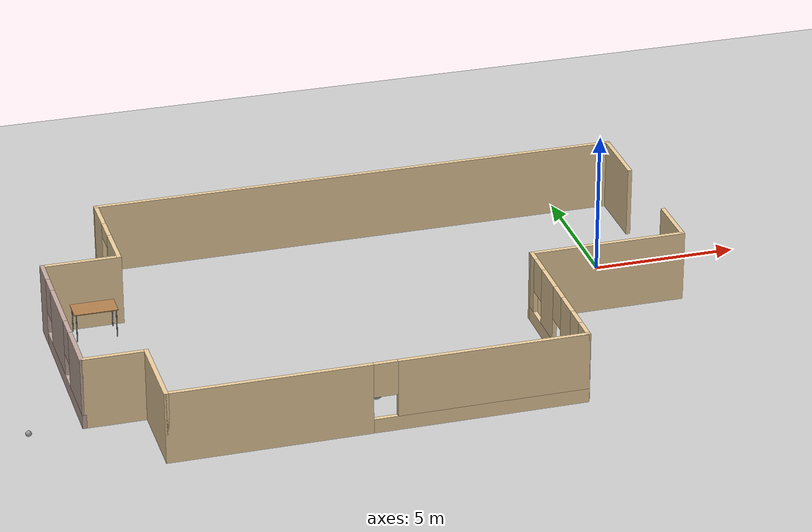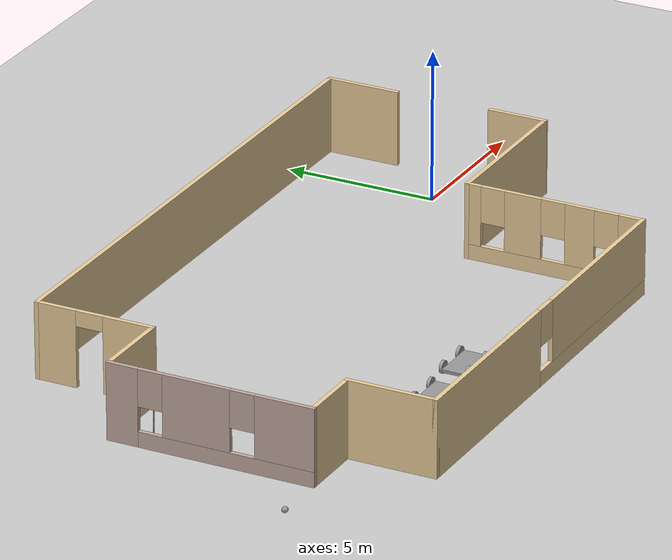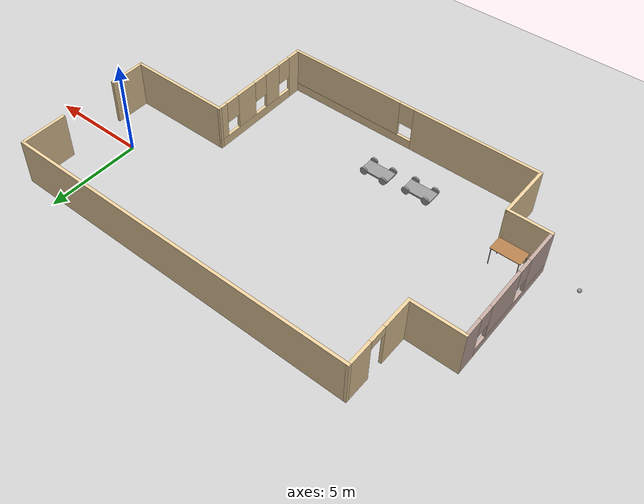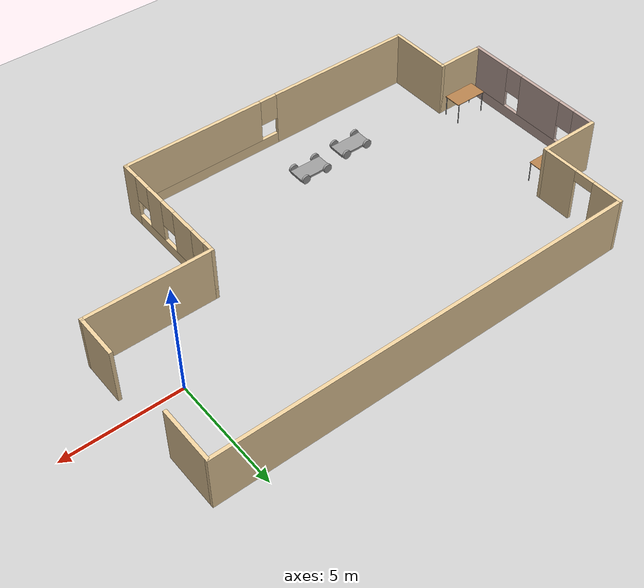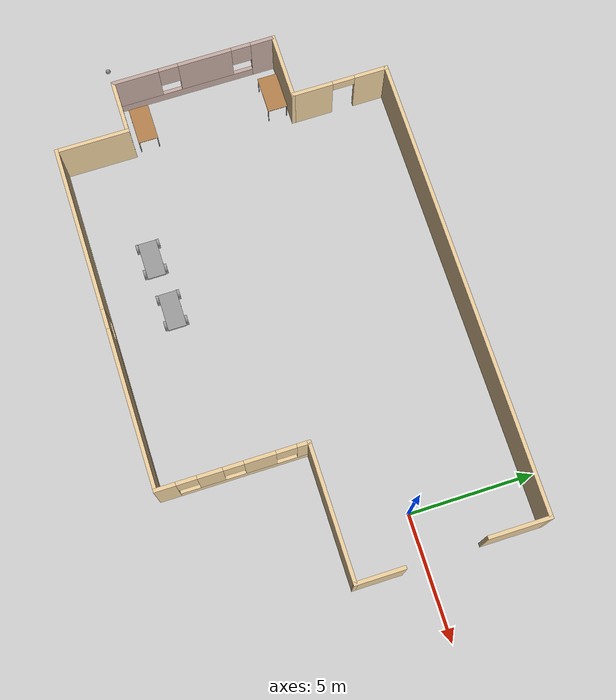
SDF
<sdf version="1.6">
 <world name="default">
  <plugin name="welcome" filename="libwelcome.so"/>
  <light name="sun" type="directional">
   <pose>0 0 10 0 -0 0</pose>
   <diffuse>0.8 0.8 0.8 1</diffuse>
   <specular>0.2 0.2 0.2 1</specular>
   <attenuation>
    <range>1000</range>
    <constant>0.9</constant>
    <linear>0.01</linear>
    <quadratic>0.001</quadratic>
   </attenuation>
   <direction>-0.5 0.1 -0.9</direction>
  </light>
  <model name="ground_plane">
   <static>1</static>
   <link name="link">
    <collision name="collision">
     <geometry><plane><normal>0 0 1</normal><size>100 100</size></plane></geometry>
     <surface>
      <contact><collide_bitmask>65535</collide_bitmask></contact>
      <friction><ode><mu>100</mu><mu2>50</mu2></ode></friction>
     </surface>
    </collision>
    <visual name="visual">
     <cast_shadows>0</cast_shadows>
     <geometry><plane><normal>0 0 1</normal><size>100 100</size></plane></geometry>
     <material>
      <script><uri>file://media/materials/scripts/gazebo.material</uri><name>Gazebo/Grey</name></script>
     </material>
    </visual>
   </link>
  </model>
  <gravity>0 0 -9.8</gravity>
  <magnetic_field>6e-06 2.3e-05 -4.2e-05</magnetic_field>
  <atmosphere type="adiabatic"/>
  <physics name="default_physics" default="0" type="ode">
   <max_step_size>0.001</max_step_size>
   <real_time_factor>1</real_time_factor>
   <real_time_update_rate>1000</real_time_update_rate>
  </physics>
  <scene><ambient>0.4 0.4 0.4 1</ambient><background>0.7 0.7 0.7 1</background><shadows>1</shadows></scene>
  <spherical_coordinates>
   <surface_model>EARTH_WGS84</surface_model>
   <latitude_deg>0</latitude_deg>
   <longitude_deg>0</longitude_deg>
   <elevation>0</elevation>
   <heading_deg>0</heading_deg>
  </spherical_coordinates>
  <model name="shop">
   <pose>-8.64191 -2.07418 0 0 -0 0</pose>
   <link name="Wall_0">
    <collision name="Wall_0_Collision">
     <geometry><box><size>18.75 0.15 2.5</size></box></geometry>
     <pose>0 0 1.25 0 -0 0</pose>
    </collision>
    <visual name="Wall_0_Visual">
     <pose>0 0 1.25 0 -0 0</pose>
     <geometry><box><size>18.75 0.15 2.5</size></box></geometry>
     <material>
      <script><uri>file://media/materials/scripts/gazebo.material</uri><name>Gazebo/Grey</name></script>
      <ambient>0.921569 0.807843 0.615686 1</ambient>
     </material>
     <meta><layer>0</layer></meta>
    </visual>
    <pose>1.24997 6.65 0 0 0 -3.14157</pose>
   </link>
   <link name="Wall_1">
    <pose>-8.04997 4.72482 0 0 0 -1.5708</pose>
    <visual name="Wall_1_Visual_0">
     <pose>-1.30185 0 1.25 0 -0 0</pose>
     <geometry><box><size>1.3963 0.15 2.5</size></box></geometry>
     <material>
      <script><uri>file://media/materials/scripts/gazebo.material</uri><name>Gazebo/Grey</name></script>
      <ambient>0.921569 0.807843 0.615686 1</ambient>
     </material>
     <meta><layer>0</layer></meta>
    </visual>
    <collision name="Wall_1_Collision_0">
     <geometry><box><size>1.3963 0.15 2.5</size></box></geometry>
     <pose>-1.30185 0 1.25 0 -0 0</pose>
    </collision>
    <visual name="Wall_1_Visual_1">
     <pose>1.14815 0 1.25 0 -0 0</pose>
     <geometry><box><size>1.7037 0.15 2.5</size></box></geometry>
     <material>
      <script><uri>file://media/materials/scripts/gazebo.material</uri><name>Gazebo/Grey</name></script>
      <ambient>0.921569 0.807843 0.615686 1</ambient>
     </material>
     <meta><layer>0</layer></meta>
    </visual>
    <collision name="Wall_1_Collision_1">
     <geometry><box><size>1.7037 0.15 2.5</size></box></geometry>
     <pose>1.14815 0 1.25 0 -0 0</pose>
    </collision>
    <visual name="Wall_1_Visual_2">
     <pose>-0.1537 0 2.25 0 -0 0</pose>
     <geometry><box><size>0.9 0.15 0.5</size></box></geometry>
     <material>
      <script><uri>file://media/materials/scripts/gazebo.material</uri><name>Gazebo/Grey</name></script>
      <ambient>0.921569 0.807843 0.615686 1</ambient>
     </material>
     <meta><layer>0</layer></meta>
    </visual>
    <collision name="Wall_1_Collision_2">
     <geometry><box><size>0.9 0.15 0.5</size></box></geometry>
     <pose>-0.1537 0 2.25 0 -0 0</pose>
    </collision>
   </link>
   <link name="Wall_14">
    <collision name="Wall_14_Collision">
     <geometry><box><size>2.5 0.15 2.5</size></box></geometry>
     <pose>0 0 1.25 0 -0 0</pose>
    </collision>
    <visual name="Wall_14_Visual">
     <pose>0 0 1.25 0 -0 0</pose>
     <geometry><box><size>2.5 0.15 2.5</size></box></geometry>
     <material>
      <script><uri>file://media/materials/scripts/gazebo.material</uri><name>Gazebo/Grey</name></script>
      <ambient>0.921569 0.807843 0.615686 1</ambient>
     </material>
     <meta><layer>0</layer></meta>
    </visual>
    <pose>10.5499 5.47518 0 0 0 -1.5708</pose>
   </link>
   <link name="Wall_2">
    <collision name="Wall_2_Collision">
     <geometry><box><size>2.75 0.15 2.5</size></box></geometry>
     <pose>0 0 1.25 0 -0 0</pose>
    </collision>
    <visual name="Wall_2_Visual">
     <pose>0 0 1.25 0 -0 0</pose>
     <geometry><box><size>2.75 0.15 2.5</size></box></geometry>
     <material>
      <script><uri>file://media/materials/scripts/gazebo.material</uri><name>Gazebo/Grey</name></script>
      <ambient>0.921569 0.807843 0.615686 1</ambient>
     </material>
     <meta><layer>0</layer></meta>
    </visual>
    <pose>-9.34997 2.79982 0 0 -0 3.14159</pose>
   </link>
   <link name="Wall_3">
    <pose>-10.65 -0.500183 0 0 0 -1.5708</pose>
    <visual name="Wall_3_Visual_0">
     <pose>-2.85749 0 1.25 0 -0 0</pose>
     <geometry><box><size>1.03502 0.15 2.5</size></box></geometry>
     <material>
      <script><uri>file://media/materials/scripts/gazebo.material</uri><name>Gazebo/Grey</name></script>
      <ambient>0.760784 0.662745 0.627451 1</ambient>
     </material>
     <meta><layer>0</layer></meta>
    </visual>
    <collision name="Wall_3_Collision_0">
     <geometry><box><size>1.03502 0.15 2.5</size></box></geometry>
     <pose>-2.85749 0 1.25 0 -0 0</pose>
    </collision>
    <visual name="Wall_3_Visual_1">
     <pose>0.517512 0 0.25 0 -0 0</pose>
     <geometry><box><size>5.71498 0.15 0.5</size></box></geometry>
     <material>
      <script><uri>file://media/materials/scripts/gazebo.material</uri><name>Gazebo/Grey</name></script>
      <ambient>0.760784 0.662745 0.627451 1</ambient>
     </material>
     <meta><layer>0</layer></meta>
    </visual>
    <collision name="Wall_3_Collision_1">
     <geometry><box><size>5.71498 0.15 0.5</size></box></geometry>
     <pose>0.517512 0 0.25 0 -0 0</pose>
    </collision>
    <visual name="Wall_3_Visual_2">
     <pose>-0.443119 0 1.5 0 -0 0</pose>
     <geometry><box><size>2.19371 0.15 2</size></box></geometry>
     <material>
      <script><uri>file://media/materials/scripts/gazebo.material</uri><name>Gazebo/Grey</name></script>
      <ambient>0.760784 0.662745 0.627451 1</ambient>
     </material>
     <meta><layer>0</layer></meta>
    </visual>
    <collision name="Wall_3_Collision_2">
     <geometry><box><size>2.19371 0.15 2</size></box></geometry>
     <pose>-0.443119 0 1.5 0 -0 0</pose>
    </collision>
    <visual name="Wall_3_Visual_3">
     <pose>2.41437 0 1.5 0 -0 0</pose>
     <geometry><box><size>1.92126 0.15 2</size></box></geometry>
     <material>
      <script><uri>file://media/materials/scripts/gazebo.material</uri><name>Gazebo/Grey</name></script>
      <ambient>0.760784 0.662745 0.627451 1</ambient>
     </material>
     <meta><layer>0</layer></meta>
    </visual>
    <collision name="Wall_3_Collision_3">
     <geometry><box><size>1.92126 0.15 2</size></box></geometry>
     <pose>2.41437 0 1.5 0 -0 0</pose>
    </collision>
    <visual name="Wall_3_Visual_4">
     <pose>-1.93998 0 1.9 0 -0 0</pose>
     <geometry><box><size>0.8 0.15 1.2</size></box></geometry>
     <material>
      <script><uri>file://media/materials/scripts/gazebo.material</uri><name>Gazebo/Grey</name></script>
      <ambient>0.760784 0.662745 0.627451 1</ambient>
     </material>
     <meta><layer>0</layer></meta>
    </visual>
    <collision name="Wall_3_Collision_4">
     <geometry><box><size>0.8 0.15 1.2</size></box></geometry>
     <pose>-1.93998 0 1.9 0 -0 0</pose>
    </collision>
    <visual name="Wall_3_Visual_5">
     <pose>1.05374 0 1.9 0 -0 0</pose>
     <geometry><box><size>0.8 0.15 1.2</size></box></geometry>
     <material>
      <script><uri>file://media/materials/scripts/gazebo.material</uri><name>Gazebo/Grey</name></script>
      <ambient>0.760784 0.662745 0.627451 1</ambient>
     </material>
     <meta><layer>0</layer></meta>
    </visual>
    <collision name="Wall_3_Collision_5">
     <geometry><box><size>0.8 0.15 1.2</size></box></geometry>
     <pose>1.05374 0 1.9 0 -0 0</pose>
    </collision>
   </link>
   <link name="Wall_4">
    <collision name="Wall_4_Collision">
     <geometry><box><size>2.25 0.15 2.5</size></box></geometry>
     <pose>0 0 1.25 0 -0 0</pose>
    </collision>
    <visual name="Wall_4_Visual">
     <pose>0 0 1.25 0 -0 0</pose>
     <geometry><box><size>2.25 0.15 2.5</size></box></geometry>
     <material>
      <script><uri>file://media/materials/scripts/gazebo.material</uri><name>Gazebo/Grey</name></script>
      <ambient>0.921569 0.807843 0.615686 1</ambient>
     </material>
     <meta><layer>0</layer></meta>
    </visual>
    <pose>-9.59997 -3.80018 0 0 -0 0</pose>
   </link>
   <link name="Wall_5">
    <collision name="Wall_5_Collision">
     <geometry><box><size>3 0.15 2.5</size></box></geometry>
     <pose>0 0 1.25 0 -0 0</pose>
    </collision>
    <visual name="Wall_5_Visual">
     <pose>0 0 1.25 0 -0 0</pose>
     <geometry><box><size>3 0.15 2.5</size></box></geometry>
     <material>
      <script><uri>file://media/materials/scripts/gazebo.material</uri><name>Gazebo/Grey</name></script>
      <ambient>0.921569 0.807843 0.615686 1</ambient>
     </material>
     <meta><layer>0</layer></meta>
    </visual>
    <pose>-8.54997 -5.22518 0 0 0 -1.5708</pose>
   </link>
   <link name="Wall_6">
    <pose>-1.62497 -6.65018 0 0 -0 0</pose>
    <visual name="Wall_6_Visual_0">
     <pose>-3.61679 0 1.25 0 -0 0</pose>
     <geometry><box><size>6.76642 0.15 2.5</size></box></geometry>
     <material>
      <script><uri>file://media/materials/scripts/gazebo.material</uri><name>Gazebo/Grey</name></script>
      <ambient>0.921569 0.807843 0.615686 1</ambient>
     </material>
     <meta><layer>0</layer></meta>
    </visual>
    <collision name="Wall_6_Collision_0">
     <geometry><box><size>6.76642 0.15 2.5</size></box></geometry>
     <pose>-3.61679 0 1.25 0 -0 0</pose>
    </collision>
    <visual name="Wall_6_Visual_1">
     <pose>3.38321 0 0.25 0 -0 0</pose>
     <geometry><box><size>7.23358 0.15 0.5</size></box></geometry>
     <material>
      <script><uri>file://media/materials/scripts/gazebo.material</uri><name>Gazebo/Grey</name></script>
      <ambient>0.921569 0.807843 0.615686 1</ambient>
     </material>
     <meta><layer>0</layer></meta>
    </visual>
    <collision name="Wall_6_Collision_1">
     <geometry><box><size>7.23358 0.15 0.5</size></box></geometry>
     <pose>3.38321 0 0.25 0 -0 0</pose>
    </collision>
    <visual name="Wall_6_Visual_2">
     <pose>3.78321 0 1.5 0 -0 0</pose>
     <geometry><box><size>6.43358 0.15 2</size></box></geometry>
     <material>
      <script><uri>file://media/materials/scripts/gazebo.material</uri><name>Gazebo/Grey</name></script>
      <ambient>0.921569 0.807843 0.615686 1</ambient>
     </material>
     <meta><layer>0</layer></meta>
    </visual>
    <collision name="Wall_6_Collision_2">
     <geometry><box><size>6.43358 0.15 2</size></box></geometry>
     <pose>3.78321 0 1.5 0 -0 0</pose>
    </collision>
    <visual name="Wall_6_Visual_3">
     <pose>0.166423 0 1.9 0 -0 0</pose>
     <geometry><box><size>0.8 0.15 1.2</size></box></geometry>
     <material>
      <script><uri>file://media/materials/scripts/gazebo.material</uri><name>Gazebo/Grey</name></script>
      <ambient>0.921569 0.807843 0.615686 1</ambient>
     </material>
     <meta><layer>0</layer></meta>
    </visual>
    <collision name="Wall_6_Collision_3">
     <geometry><box><size>0.8 0.15 1.2</size></box></geometry>
     <pose>0.166423 0 1.9 0 -0 0</pose>
    </collision>
   </link>
   <link name="Wall_7">
    <pose>5.30003 -3.72518 0 0 -0 1.5708</pose>
    <visual name="Wall_7_Visual_0">
     <pose>-2.57646 0 1.25 0 -0 0</pose>
     <geometry><box><size>0.847072 0.15 2.5</size></box></geometry>
     <material>
      <script><uri>file://media/materials/scripts/gazebo.material</uri><name>Gazebo/Grey</name></script>
      <ambient>0.921569 0.807843 0.615686 1</ambient>
     </material>
     <meta><layer>0</layer></meta>
    </visual>
    <collision name="Wall_7_Collision_0">
     <geometry><box><size>0.847072 0.15 2.5</size></box></geometry>
     <pose>-2.57646 0 1.25 0 -0 0</pose>
    </collision>
    <visual name="Wall_7_Visual_1">
     <pose>0.423536 0 0.25 0 -0 0</pose>
     <geometry><box><size>5.15293 0.15 0.5</size></box></geometry>
     <material>
      <script><uri>file://media/materials/scripts/gazebo.material</uri><name>Gazebo/Grey</name></script>
      <ambient>0.921569 0.807843 0.615686 1</ambient>
     </material>
     <meta><layer>0</layer></meta>
    </visual>
    <collision name="Wall_7_Collision_1">
     <geometry><box><size>5.15293 0.15 0.5</size></box></geometry>
     <pose>0.423536 0 0.25 0 -0 0</pose>
    </collision>
    <visual name="Wall_7_Visual_2">
     <pose>-0.862905 0 1.5 0 -0 0</pose>
     <geometry><box><size>0.980045 0.15 2</size></box></geometry>
     <material>
      <script><uri>file://media/materials/scripts/gazebo.material</uri><name>Gazebo/Grey</name></script>
      <ambient>0.921569 0.807843 0.615686 1</ambient>
     </material>
     <meta><layer>0</layer></meta>
    </visual>
    <collision name="Wall_7_Collision_2">
     <geometry><box><size>0.980045 0.15 2</size></box></geometry>
     <pose>-0.862905 0 1.5 0 -0 0</pose>
    </collision>
    <visual name="Wall_7_Visual_3">
     <pose>1.03851 0 1.5 0 -0 0</pose>
     <geometry><box><size>1.22278 0.15 2</size></box></geometry>
     <material>
      <script><uri>file://media/materials/scripts/gazebo.material</uri><name>Gazebo/Grey</name></script>
      <ambient>0.921569 0.807843 0.615686 1</ambient>
     </material>
     <meta><layer>0</layer></meta>
    </visual>
    <collision name="Wall_7_Collision_3">
     <geometry><box><size>1.22278 0.15 2</size></box></geometry>
     <pose>1.03851 0 1.5 0 -0 0</pose>
    </collision>
    <visual name="Wall_7_Visual_4">
     <pose>2.72495 0 1.5 0 -0 0</pose>
     <geometry><box><size>0.550104 0.15 2</size></box></geometry>
     <material>
      <script><uri>file://media/materials/scripts/gazebo.material</uri><name>Gazebo/Grey</name></script>
      <ambient>0.921569 0.807843 0.615686 1</ambient>
     </material>
     <meta><layer>0</layer></meta>
    </visual>
    <collision name="Wall_7_Collision_4">
     <geometry><box><size>0.550104 0.15 2</size></box></geometry>
     <pose>2.72495 0 1.5 0 -0 0</pose>
    </collision>
    <visual name="Wall_7_Visual_5">
     <pose>-1.75293 0 1.9 0 -0 0</pose>
     <geometry><box><size>0.8 0.15 1.2</size></box></geometry>
     <material>
      <script><uri>file://media/materials/scripts/gazebo.material</uri><name>Gazebo/Grey</name></script>
      <ambient>0.921569 0.807843 0.615686 1</ambient>
     </material>
     <meta><layer>0</layer></meta>
    </visual>
    <collision name="Wall_7_Collision_5">
     <geometry><box><size>0.8 0.15 1.2</size></box></geometry>
     <pose>-1.75293 0 1.9 0 -0 0</pose>
    </collision>
    <visual name="Wall_7_Visual_6">
     <pose>0.027117 0 1.9 0 -0 0</pose>
     <geometry><box><size>0.8 0.15 1.2</size></box></geometry>
     <material>
      <script><uri>file://media/materials/scripts/gazebo.material</uri><name>Gazebo/Grey</name></script>
      <ambient>0.921569 0.807843 0.615686 1</ambient>
     </material>
     <meta><layer>0</layer></meta>
    </visual>
    <collision name="Wall_7_Collision_6">
     <geometry><box><size>0.8 0.15 1.2</size></box></geometry>
     <pose>0.027117 0 1.9 0 -0 0</pose>
    </collision>
    <visual name="Wall_7_Visual_7">
     <pose>2.0499 0 1.9 0 -0 0</pose>
     <geometry><box><size>0.8 0.15 1.2</size></box></geometry>
     <material>
      <script><uri>file://media/materials/scripts/gazebo.material</uri><name>Gazebo/Grey</name></script>
      <ambient>0.921569 0.807843 0.615686 1</ambient>
     </material>
     <meta><layer>0</layer></meta>
    </visual>
    <collision name="Wall_7_Collision_7">
     <geometry><box><size>0.8 0.15 1.2</size></box></geometry>
     <pose>2.0499 0 1.9 0 -0 0</pose>
    </collision>
   </link>
   <link name="Wall_8">
    <collision name="Wall_8_Collision">
     <geometry><box><size>5.5 0.15 2.5</size></box></geometry>
     <pose>0 0 1.25 0 -0 0</pose>
    </collision>
    <visual name="Wall_8_Visual">
     <pose>0 0 1.25 0 -0 0</pose>
     <geometry><box><size>5.5 0.15 2.5</size></box></geometry>
     <material>
      <script><uri>file://media/materials/scripts/gazebo.material</uri><name>Gazebo/Grey</name></script>
      <ambient>0.921569 0.807843 0.615686 1</ambient>
     </material>
     <meta><layer>0</layer></meta>
    </visual>
    <pose>7.97497 -0.800001 0 0 -0 6.8e-05</pose>
   </link>
   <link name="Wall_9">
    <collision name="Wall_9_Collision">
     <geometry><box><size>2 0.15 2.5</size></box></geometry>
     <pose>0 0 1.25 0 -0 0</pose>
    </collision>
    <visual name="Wall_9_Visual">
     <pose>0 0 1.25 0 -0 0</pose>
     <geometry><box><size>2 0.15 2.5</size></box></geometry>
     <material>
      <script><uri>file://media/materials/scripts/gazebo.material</uri><name>Gazebo/Grey</name></script>
      <ambient>0.921569 0.807843 0.615686 1</ambient>
     </material>
     <meta><layer>0</layer></meta>
    </visual>
    <pose>10.6499 0.125181 0 0 -0 1.5708</pose>
   </link>
   <static>1</static>
  </model>
  <model name="car">
   <link name="link_0">
    <pose>0 0 0.124 0 -0 0</pose>
    <inertial>
     <mass>1</mass>
     <inertia>
      <ixx>0.166667</ixx>
      <ixy>0</ixy>
      <ixz>0</ixz>
      <iyy>0.166667</iyy>
      <iyz>0</iyz>
      <izz>0.166667</izz>
     </inertia>
    </inertial>
    <visual name="visual">
     <geometry><box><size>1.5 0.75 0.1</size></box></geometry>
     <material>
      <lighting>1</lighting>
      <script><uri>file://media/materials/scripts/gazebo.material</uri><name>Gazebo/Grey</name></script>
      <shader type="pixel"><normal_map>__default__</normal_map></shader>
      <ambient>0.3 0.3 0.3 1</ambient>
      <diffuse>0.7 0.7 0.7 1</diffuse>
      <specular>0.01 0.01 0.01 1</specular>
      <emissive>0 0 0 1</emissive>
     </material>
    </visual>
    <collision name="collision">
     <geometry><box><size>1.5 0.75 0.1</size></box></geometry>
     <surface>
      <friction>
       <ode><mu>1</mu><mu2>1</mu2><fdir1>0 0 0</fdir1><slip1>0</slip1><slip2>0</slip2></ode>
       <torsional>
        <coefficient>1</coefficient>
        <patch_radius>0</patch_radius>
        <surface_radius>0</surface_radius>
        <use_patch_radius>1</use_patch_radius>
        <ode><slip>0</slip></ode>
       </torsional>
      </friction>
      <bounce><restitution_coefficient>0</restitution_coefficient><threshold>1e+06</threshold></bounce>
      <contact>
       <collide_without_contact>0</collide_without_contact>
       <collide_without_contact_bitmask>1</collide_without_contact_bitmask>
       <collide_bitmask>1</collide_bitmask>
       <ode>
        <soft_cfm>0</soft_cfm>
        <soft_erp>0.2</soft_erp>
        <kp>1e+13</kp>
        <kd>1</kd>
        <max_vel>0.01</max_vel>
        <min_depth>0</min_depth>
       </ode>
       <bullet>
        <split_impulse>1</split_impulse>
        <split_impulse_penetration_threshold>-0.01</split_impulse_penetration_threshold>
        <soft_cfm>0</soft_cfm>
        <soft_erp>0.2</soft_erp>
        <kp>1e+13</kp>
        <kd>1</kd>
       </bullet>
      </contact>
     </surface>
    </collision>
   </link>
   <link name="link_1_clone">
    <pose>-0.55 0.425019 -0.031 0 -0 0</pose>
    <inertial>
     <mass>1</mass>
     <inertia><ixx>0.145833</ixx><ixy>0</ixy><ixz>0</ixz><iyy>0.145833</iyy><iyz>0</iyz><izz>0.125</izz></inertia>
    </inertial>
    <visual name="visual">
     <pose>0 0 0.2 1.5707 -0 0</pose>
     <geometry><cylinder><radius>0.2</radius><length>0.1</length></cylinder></geometry>
     <material>
      <lighting>1</lighting>
      <script><uri>file://media/materials/scripts/gazebo.material</uri><name>Gazebo/Grey</name></script>
      <shader type="pixel"><normal_map>__default__</normal_map></shader>
      <ambient>0.3 0.3 0.3 1</ambient>
      <diffuse>0.7 0.7 0.7 1</diffuse>
      <specular>0.01 0.01 0.01 1</specular>
      <emissive>0 0 0 1</emissive>
     </material>
    </visual>
    <collision name="collision">
     <pose>0 0 0.2 1.5707 -0 0</pose>
     <geometry><cylinder><radius>0.2</radius><length>0.1</length></cylinder></geometry>
     <surface>
      <friction>
       <ode><mu>1</mu><mu2>1</mu2><fdir1>0 0 0</fdir1><slip1>0</slip1><slip2>0</slip2></ode>
       <torsional>
        <coefficient>1</coefficient>
        <patch_radius>0</patch_radius>
        <surface_radius>0</surface_radius>
        <use_patch_radius>1</use_patch_radius>
        <ode><slip>0</slip></ode>
       </torsional>
      </friction>
      <bounce><restitution_coefficient>0</restitution_coefficient><threshold>1e+06</threshold></bounce>
      <contact>
       <collide_without_contact>0</collide_without_contact>
       <collide_without_contact_bitmask>1</collide_without_contact_bitmask>
       <collide_bitmask>1</collide_bitmask>
       <ode>
        <soft_cfm>0</soft_cfm>
        <soft_erp>0.2</soft_erp>
        <kp>1e+13</kp>
        <kd>1</kd>
        <max_vel>0.01</max_vel>
        <min_depth>0</min_depth>
       </ode>
       <bullet>
        <split_impulse>1</split_impulse>
        <split_impulse_penetration_threshold>-0.01</split_impulse_penetration_threshold>
        <soft_cfm>0</soft_cfm>
        <soft_erp>0.2</soft_erp>
        <kp>1e+13</kp>
        <kd>1</kd>
       </bullet>
      </contact>
     </surface>
    </collision>
   </link>
   <link name="link_1_clone_clone">
    <pose>0.55 0.425019 -0.031 0 -0 0</pose>
    <inertial>
     <mass>1</mass>
     <inertia><ixx>0.145833</ixx><ixy>0</ixy><ixz>0</ixz><iyy>0.145833</iyy><iyz>0</iyz><izz>0.125</izz></inertia>
    </inertial>
    <visual name="visual">
     <pose>0 0 0.2 1.5707 -0 0</pose>
     <geometry><cylinder><radius>0.2</radius><length>0.1</length></cylinder></geometry>
     <material>
      <lighting>1</lighting>
      <script><uri>file://media/materials/scripts/gazebo.material</uri><name>Gazebo/Grey</name></script>
      <shader type="pixel"><normal_map>__default__</normal_map></shader>
      <ambient>0.3 0.3 0.3 1</ambient>
      <diffuse>0.7 0.7 0.7 1</diffuse>
      <specular>0.01 0.01 0.01 1</specular>
      <emissive>0 0 0 1</emissive>
     </material>
    </visual>
    <collision name="collision">
     <pose>0 0 0.2 1.5707 -0 0</pose>
     <geometry><cylinder><radius>0.2</radius><length>0.1</length></cylinder></geometry>
     <surface>
      <friction>
       <ode><mu>1</mu><mu2>1</mu2><fdir1>0 0 0</fdir1><slip1>0</slip1><slip2>0</slip2></ode>
       <torsional>
        <coefficient>1</coefficient>
        <patch_radius>0</patch_radius>
        <surface_radius>0</surface_radius>
        <use_patch_radius>1</use_patch_radius>
        <ode><slip>0</slip></ode>
       </torsional>
      </friction>
      <bounce><restitution_coefficient>0</restitution_coefficient><threshold>1e+06</threshold></bounce>
      <contact>
       <collide_without_contact>0</collide_without_contact>
       <collide_without_contact_bitmask>1</collide_without_contact_bitmask>
       <collide_bitmask>1</collide_bitmask>
       <ode>
        <soft_cfm>0</soft_cfm>
        <soft_erp>0.2</soft_erp>
        <kp>1e+13</kp>
        <kd>1</kd>
        <max_vel>0.01</max_vel>
        <min_depth>0</min_depth>
       </ode>
       <bullet>
        <split_impulse>1</split_impulse>
        <split_impulse_penetration_threshold>-0.01</split_impulse_penetration_threshold>
        <soft_cfm>0</soft_cfm>
        <soft_erp>0.2</soft_erp>
        <kp>1e+13</kp>
        <kd>1</kd>
       </bullet>
      </contact>
     </surface>
    </collision>
   </link>
   <link name="link_1_clone_clone_clone">
    <pose>0.55 -0.425019 -0.031 0 -0 0</pose>
    <inertial>
     <mass>1</mass>
     <inertia><ixx>0.145833</ixx><ixy>0</ixy><ixz>0</ixz><iyy>0.145833</iyy><iyz>0</iyz><izz>0.125</izz></inertia>
    </inertial>
    <visual name="visual">
     <pose>0 0 0.2 1.5707 -0 0</pose>
     <geometry><cylinder><radius>0.2</radius><length>0.1</length></cylinder></geometry>
     <material>
      <lighting>1</lighting>
      <script><uri>file://media/materials/scripts/gazebo.material</uri><name>Gazebo/Grey</name></script>
      <shader type="pixel"><normal_map>__default__</normal_map></shader>
      <ambient>0.3 0.3 0.3 1</ambient>
      <diffuse>0.7 0.7 0.7 1</diffuse>
      <specular>0.01 0.01 0.01 1</specular>
      <emissive>0 0 0 1</emissive>
     </material>
    </visual>
    <collision name="collision">
     <pose>0 0 0.2 1.5707 -0 0</pose>
     <geometry><cylinder><radius>0.2</radius><length>0.1</length></cylinder></geometry>
     <surface>
      <friction>
       <ode><mu>1</mu><mu2>1</mu2><fdir1>0 0 0</fdir1><slip1>0</slip1><slip2>0</slip2></ode>
       <torsional>
        <coefficient>1</coefficient>
        <patch_radius>0</patch_radius>
        <surface_radius>0</surface_radius>
        <use_patch_radius>1</use_patch_radius>
        <ode><slip>0</slip></ode>
       </torsional>
      </friction>
      <bounce><restitution_coefficient>0</restitution_coefficient><threshold>1e+06</threshold></bounce>
      <contact>
       <collide_without_contact>0</collide_without_contact>
       <collide_without_contact_bitmask>1</collide_without_contact_bitmask>
       <collide_bitmask>1</collide_bitmask>
       <ode>
        <soft_cfm>0</soft_cfm>
        <soft_erp>0.2</soft_erp>
        <kp>1e+13</kp>
        <kd>1</kd>
        <max_vel>0.01</max_vel>
        <min_depth>0</min_depth>
       </ode>
       <bullet>
        <split_impulse>1</split_impulse>
        <split_impulse_penetration_threshold>-0.01</split_impulse_penetration_threshold>
        <soft_cfm>0</soft_cfm>
        <soft_erp>0.2</soft_erp>
        <kp>1e+13</kp>
        <kd>1</kd>
       </bullet>
      </contact>
     </surface>
    </collision>
   </link>
   <link name="link_1_clone_clone_clone_clone">
    <pose>-0.55 -0.425019 -0.031 0 -0 0</pose>
    <inertial>
     <mass>1</mass>
     <inertia><ixx>0.145833</ixx><ixy>0</ixy><ixz>0</ixz><iyy>0.145833</iyy><iyz>0</iyz><izz>0.125</izz></inertia>
    </inertial>
    <visual name="visual">
     <pose>0 0 0.2 1.5707 -0 0</pose>
     <geometry><cylinder><radius>0.2</radius><length>0.1</length></cylinder></geometry>
     <material>
      <lighting>1</lighting>
      <script><uri>file://media/materials/scripts/gazebo.material</uri><name>Gazebo/Grey</name></script>
      <shader type="pixel"><normal_map>__default__</normal_map></shader>
      <ambient>0.3 0.3 0.3 1</ambient>
      <diffuse>0.7 0.7 0.7 1</diffuse>
      <specular>0.01 0.01 0.01 1</specular>
      <emissive>0 0 0 1</emissive>
     </material>
    </visual>
    <collision name="collision">
     <pose>0 0 0.2 1.5707 -0 0</pose>
     <geometry><cylinder><radius>0.2</radius><length>0.1</length></cylinder></geometry>
     <surface>
      <friction>
       <ode><mu>1</mu><mu2>1</mu2><fdir1>0 0 0</fdir1><slip1>0</slip1><slip2>0</slip2></ode>
       <torsional>
        <coefficient>1</coefficient>
        <patch_radius>0</patch_radius>
        <surface_radius>0</surface_radius>
        <use_patch_radius>1</use_patch_radius>
        <ode><slip>0</slip></ode>
       </torsional>
      </friction>
      <bounce><restitution_coefficient>0</restitution_coefficient><threshold>1e+06</threshold></bounce>
      <contact>
       <collide_without_contact>0</collide_without_contact>
       <collide_without_contact_bitmask>1</collide_without_contact_bitmask>
       <collide_bitmask>1</collide_bitmask>
       <ode>
        <soft_cfm>0</soft_cfm>
        <soft_erp>0.2</soft_erp>
        <kp>1e+13</kp>
        <kd>1</kd>
        <max_vel>0.01</max_vel>
        <min_depth>0</min_depth>
       </ode>
       <bullet>
        <split_impulse>1</split_impulse>
        <split_impulse_penetration_threshold>-0.01</split_impulse_penetration_threshold>
        <soft_cfm>0</soft_cfm>
        <soft_erp>0.2</soft_erp>
        <kp>1e+13</kp>
        <kd>1</kd>
       </bullet>
      </contact>
     </surface>
    </collision>
   </link>
   <joint name="link_0_JOINT_1" type="revolute">
    <parent>link_0</parent>
    <child>link_1_clone</child>
    <axis>
     <xyz>1 0 0</xyz>
     <use_parent_model_frame>0</use_parent_model_frame>
     <limit>
      <lower>-1.79769e+308</lower>
      <upper>1.79769e+308</upper>
      <effort>-1</effort>
      <velocity>-1</velocity>
     </limit>
     <dynamics>
      <spring_reference>0</spring_reference>
      <spring_stiffness>0</spring_stiffness>
      <damping>0</damping>
     </dynamics>
    </axis>
    <physics>
     <ode><limit><cfm>0</cfm><erp>0.2</erp></limit><suspension><cfm>0</cfm><erp>0.2</erp></suspension></ode>
    </physics>
   </joint>
   <joint name="link_0_JOINT_2" type="revolute">
    <parent>link_0</parent>
    <child>link_1_clone_clone</child>
    <axis>
     <xyz>1 0 0</xyz>
     <use_parent_model_frame>0</use_parent_model_frame>
     <limit>
      <lower>-1.79769e+308</lower>
      <upper>1.79769e+308</upper>
      <effort>-1</effort>
      <velocity>-1</velocity>
     </limit>
     <dynamics>
      <spring_reference>0</spring_reference>
      <spring_stiffness>0</spring_stiffness>
      <damping>0</damping>
     </dynamics>
    </axis>
    <physics>
     <ode><limit><cfm>0</cfm><erp>0.2</erp></limit><suspension><cfm>0</cfm><erp>0.2</erp></suspension></ode>
    </physics>
   </joint>
   <joint name="link_0_JOINT_3" type="revolute">
    <parent>link_0</parent>
    <child>link_1_clone_clone_clone</child>
    <axis>
     <xyz>1 0 0</xyz>
     <use_parent_model_frame>0</use_parent_model_frame>
     <limit>
      <lower>-1.79769e+308</lower>
      <upper>1.79769e+308</upper>
      <effort>-1</effort>
      <velocity>-1</velocity>
     </limit>
     <dynamics>
      <spring_reference>0</spring_reference>
      <spring_stiffness>0</spring_stiffness>
      <damping>0</damping>
     </dynamics>
    </axis>
    <physics>
     <ode><limit><cfm>0</cfm><erp>0.2</erp></limit><suspension><cfm>0</cfm><erp>0.2</erp></suspension></ode>
    </physics>
   </joint>
   <joint name="link_0_JOINT_4" type="revolute">
    <parent>link_0</parent>
    <child>link_1_clone_clone_clone_clone</child>
    <axis>
     <xyz>1 0 0</xyz>
     <use_parent_model_frame>0</use_parent_model_frame>
     <limit>
      <lower>-1.79769e+308</lower>
      <upper>1.79769e+308</upper>
      <effort>-1</effort>
      <velocity>-1</velocity>
     </limit>
     <dynamics>
      <spring_reference>0</spring_reference>
      <spring_stiffness>0</spring_stiffness>
      <damping>0</damping>
     </dynamics>
    </axis>
    <physics>
     <ode><limit><cfm>0</cfm><erp>0.2</erp></limit><suspension><cfm>0</cfm><erp>0.2</erp></suspension></ode>
    </physics>
   </joint>
   <static>0</static>
   <pose>-10.3741 -6.26004 0.031 0 -0 0.000123</pose>
  </model>
  <model name="car_0">
   <link name="link_0">
    <pose>0 0 0.124 0 -0 0</pose>
    <inertial>
     <mass>1</mass>
     <inertia>
      <ixx>0.166667</ixx>
      <ixy>0</ixy>
      <ixz>0</ixz>
      <iyy>0.166667</iyy>
      <iyz>0</iyz>
      <izz>0.166667</izz>
     </inertia>
    </inertial>
    <visual name="visual">
     <geometry><box><size>1.5 0.75 0.1</size></box></geometry>
     <material>
      <lighting>1</lighting>
      <script><uri>file://media/materials/scripts/gazebo.material</uri><name>Gazebo/Grey</name></script>
      <shader type="pixel"><normal_map>__default__</normal_map></shader>
      <ambient>0.3 0.3 0.3 1</ambient>
      <diffuse>0.7 0.7 0.7 1</diffuse>
      <specular>0.01 0.01 0.01 1</specular>
      <emissive>0 0 0 1</emissive>
     </material>
    </visual>
    <collision name="collision">
     <geometry><box><size>1.5 0.75 0.1</size></box></geometry>
     <surface>
      <friction>
       <ode><mu>1</mu><mu2>1</mu2><fdir1>0 0 0</fdir1><slip1>0</slip1><slip2>0</slip2></ode>
       <torsional>
        <coefficient>1</coefficient>
        <patch_radius>0</patch_radius>
        <surface_radius>0</surface_radius>
        <use_patch_radius>1</use_patch_radius>
        <ode><slip>0</slip></ode>
       </torsional>
      </friction>
      <bounce><restitution_coefficient>0</restitution_coefficient><threshold>1e+06</threshold></bounce>
      <contact>
       <collide_without_contact>0</collide_without_contact>
       <collide_without_contact_bitmask>1</collide_without_contact_bitmask>
       <collide_bitmask>1</collide_bitmask>
       <ode>
        <soft_cfm>0</soft_cfm>
        <soft_erp>0.2</soft_erp>
        <kp>1e+13</kp>
        <kd>1</kd>
        <max_vel>0.01</max_vel>
        <min_depth>0</min_depth>
       </ode>
       <bullet>
        <split_impulse>1</split_impulse>
        <split_impulse_penetration_threshold>-0.01</split_impulse_penetration_threshold>
        <soft_cfm>0</soft_cfm>
        <soft_erp>0.2</soft_erp>
        <kp>1e+13</kp>
        <kd>1</kd>
       </bullet>
      </contact>
     </surface>
    </collision>
   </link>
   <link name="link_1_clone">
    <pose>-0.55 0.425019 -0.031 0 -0 0</pose>
    <inertial>
     <mass>1</mass>
     <inertia><ixx>0.145833</ixx><ixy>0</ixy><ixz>0</ixz><iyy>0.145833</iyy><iyz>0</iyz><izz>0.125</izz></inertia>
    </inertial>
    <visual name="visual">
     <pose>0 0 0.2 1.5707 -0 0</pose>
     <geometry><cylinder><radius>0.2</radius><length>0.1</length></cylinder></geometry>
     <material>
      <lighting>1</lighting>
      <script><uri>file://media/materials/scripts/gazebo.material</uri><name>Gazebo/Grey</name></script>
      <shader type="pixel"><normal_map>__default__</normal_map></shader>
      <ambient>0.3 0.3 0.3 1</ambient>
      <diffuse>0.7 0.7 0.7 1</diffuse>
      <specular>0.01 0.01 0.01 1</specular>
      <emissive>0 0 0 1</emissive>
     </material>
    </visual>
    <collision name="collision">
     <pose>0 0 0.2 1.5707 -0 0</pose>
     <geometry><cylinder><radius>0.2</radius><length>0.1</length></cylinder></geometry>
     <surface>
      <friction>
       <ode><mu>1</mu><mu2>1</mu2><fdir1>0 0 0</fdir1><slip1>0</slip1><slip2>0</slip2></ode>
       <torsional>
        <coefficient>1</coefficient>
        <patch_radius>0</patch_radius>
        <surface_radius>0</surface_radius>
        <use_patch_radius>1</use_patch_radius>
        <ode><slip>0</slip></ode>
       </torsional>
      </friction>
      <bounce><restitution_coefficient>0</restitution_coefficient><threshold>1e+06</threshold></bounce>
      <contact>
       <collide_without_contact>0</collide_without_contact>
       <collide_without_contact_bitmask>1</collide_without_contact_bitmask>
       <collide_bitmask>1</collide_bitmask>
       <ode>
        <soft_cfm>0</soft_cfm>
        <soft_erp>0.2</soft_erp>
        <kp>1e+13</kp>
        <kd>1</kd>
        <max_vel>0.01</max_vel>
        <min_depth>0</min_depth>
       </ode>
       <bullet>
        <split_impulse>1</split_impulse>
        <split_impulse_penetration_threshold>-0.01</split_impulse_penetration_threshold>
        <soft_cfm>0</soft_cfm>
        <soft_erp>0.2</soft_erp>
        <kp>1e+13</kp>
        <kd>1</kd>
       </bullet>
      </contact>
     </surface>
    </collision>
   </link>
   <link name="link_1_clone_clone">
    <pose>0.55 0.425019 -0.031 0 -0 0</pose>
    <inertial>
     <mass>1</mass>
     <inertia><ixx>0.145833</ixx><ixy>0</ixy><ixz>0</ixz><iyy>0.145833</iyy><iyz>0</iyz><izz>0.125</izz></inertia>
    </inertial>
    <visual name="visual">
     <pose>0 0 0.2 1.5707 -0 0</pose>
     <geometry><cylinder><radius>0.2</radius><length>0.1</length></cylinder></geometry>
     <material>
      <lighting>1</lighting>
      <script><uri>file://media/materials/scripts/gazebo.material</uri><name>Gazebo/Grey</name></script>
      <shader type="pixel"><normal_map>__default__</normal_map></shader>
      <ambient>0.3 0.3 0.3 1</ambient>
      <diffuse>0.7 0.7 0.7 1</diffuse>
      <specular>0.01 0.01 0.01 1</specular>
      <emissive>0 0 0 1</emissive>
     </material>
    </visual>
    <collision name="collision">
     <pose>0 0 0.2 1.5707 -0 0</pose>
     <geometry><cylinder><radius>0.2</radius><length>0.1</length></cylinder></geometry>
     <surface>
      <friction>
       <ode><mu>1</mu><mu2>1</mu2><fdir1>0 0 0</fdir1><slip1>0</slip1><slip2>0</slip2></ode>
       <torsional>
        <coefficient>1</coefficient>
        <patch_radius>0</patch_radius>
        <surface_radius>0</surface_radius>
        <use_patch_radius>1</use_patch_radius>
        <ode><slip>0</slip></ode>
       </torsional>
      </friction>
      <bounce><restitution_coefficient>0</restitution_coefficient><threshold>1e+06</threshold></bounce>
      <contact>
       <collide_without_contact>0</collide_without_contact>
       <collide_without_contact_bitmask>1</collide_without_contact_bitmask>
       <collide_bitmask>1</collide_bitmask>
       <ode>
        <soft_cfm>0</soft_cfm>
        <soft_erp>0.2</soft_erp>
        <kp>1e+13</kp>
        <kd>1</kd>
        <max_vel>0.01</max_vel>
        <min_depth>0</min_depth>
       </ode>
       <bullet>
        <split_impulse>1</split_impulse>
        <split_impulse_penetration_threshold>-0.01</split_impulse_penetration_threshold>
        <soft_cfm>0</soft_cfm>
        <soft_erp>0.2</soft_erp>
        <kp>1e+13</kp>
        <kd>1</kd>
       </bullet>
      </contact>
     </surface>
    </collision>
   </link>
   <link name="link_1_clone_clone_clone">
    <pose>0.55 -0.425019 -0.031 0 -0 0</pose>
    <inertial>
     <mass>1</mass>
     <inertia><ixx>0.145833</ixx><ixy>0</ixy><ixz>0</ixz><iyy>0.145833</iyy><iyz>0</iyz><izz>0.125</izz></inertia>
    </inertial>
    <visual name="visual">
     <pose>0 0 0.2 1.5707 -0 0</pose>
     <geometry><cylinder><radius>0.2</radius><length>0.1</length></cylinder></geometry>
     <material>
      <lighting>1</lighting>
      <script><uri>file://media/materials/scripts/gazebo.material</uri><name>Gazebo/Grey</name></script>
      <shader type="pixel"><normal_map>__default__</normal_map></shader>
      <ambient>0.3 0.3 0.3 1</ambient>
      <diffuse>0.7 0.7 0.7 1</diffuse>
      <specular>0.01 0.01 0.01 1</specular>
      <emissive>0 0 0 1</emissive>
     </material>
    </visual>
    <collision name="collision">
     <pose>0 0 0.2 1.5707 -0 0</pose>
     <geometry><cylinder><radius>0.2</radius><length>0.1</length></cylinder></geometry>
     <surface>
      <friction>
       <ode><mu>1</mu><mu2>1</mu2><fdir1>0 0 0</fdir1><slip1>0</slip1><slip2>0</slip2></ode>
       <torsional>
        <coefficient>1</coefficient>
        <patch_radius>0</patch_radius>
        <surface_radius>0</surface_radius>
        <use_patch_radius>1</use_patch_radius>
        <ode><slip>0</slip></ode>
       </torsional>
      </friction>
      <bounce><restitution_coefficient>0</restitution_coefficient><threshold>1e+06</threshold></bounce>
      <contact>
       <collide_without_contact>0</collide_without_contact>
       <collide_without_contact_bitmask>1</collide_without_contact_bitmask>
       <collide_bitmask>1</collide_bitmask>
       <ode>
        <soft_cfm>0</soft_cfm>
        <soft_erp>0.2</soft_erp>
        <kp>1e+13</kp>
        <kd>1</kd>
        <max_vel>0.01</max_vel>
        <min_depth>0</min_depth>
       </ode>
       <bullet>
        <split_impulse>1</split_impulse>
        <split_impulse_penetration_threshold>-0.01</split_impulse_penetration_threshold>
        <soft_cfm>0</soft_cfm>
        <soft_erp>0.2</soft_erp>
        <kp>1e+13</kp>
        <kd>1</kd>
       </bullet>
      </contact>
     </surface>
    </collision>
   </link>
   <link name="link_1_clone_clone_clone_clone">
    <pose>-0.55 -0.425019 -0.031 0 -0 0</pose>
    <inertial>
     <mass>1</mass>
     <inertia><ixx>0.145833</ixx><ixy>0</ixy><ixz>0</ixz><iyy>0.145833</iyy><iyz>0</iyz><izz>0.125</izz></inertia>
    </inertial>
    <visual name="visual">
     <pose>0 0 0.2 1.5707 -0 0</pose>
     <geometry><cylinder><radius>0.2</radius><length>0.1</length></cylinder></geometry>
     <material>
      <lighting>1</lighting>
      <script><uri>file://media/materials/scripts/gazebo.material</uri><name>Gazebo/Grey</name></script>
      <shader type="pixel"><normal_map>__default__</normal_map></shader>
      <ambient>0.3 0.3 0.3 1</ambient>
      <diffuse>0.7 0.7 0.7 1</diffuse>
      <specular>0.01 0.01 0.01 1</specular>
      <emissive>0 0 0 1</emissive>
     </material>
    </visual>
    <collision name="collision">
     <pose>0 0 0.2 1.5707 -0 0</pose>
     <geometry><cylinder><radius>0.2</radius><length>0.1</length></cylinder></geometry>
     <surface>
      <friction>
       <ode><mu>1</mu><mu2>1</mu2><fdir1>0 0 0</fdir1><slip1>0</slip1><slip2>0</slip2></ode>
       <torsional>
        <coefficient>1</coefficient>
        <patch_radius>0</patch_radius>
        <surface_radius>0</surface_radius>
        <use_patch_radius>1</use_patch_radius>
        <ode><slip>0</slip></ode>
       </torsional>
      </friction>
      <bounce><restitution_coefficient>0</restitution_coefficient><threshold>1e+06</threshold></bounce>
      <contact>
       <collide_without_contact>0</collide_without_contact>
       <collide_without_contact_bitmask>1</collide_without_contact_bitmask>
       <collide_bitmask>1</collide_bitmask>
       <ode>
        <soft_cfm>0</soft_cfm>
        <soft_erp>0.2</soft_erp>
        <kp>1e+13</kp>
        <kd>1</kd>
        <max_vel>0.01</max_vel>
        <min_depth>0</min_depth>
       </ode>
       <bullet>
        <split_impulse>1</split_impulse>
        <split_impulse_penetration_threshold>-0.01</split_impulse_penetration_threshold>
        <soft_cfm>0</soft_cfm>
        <soft_erp>0.2</soft_erp>
        <kp>1e+13</kp>
        <kd>1</kd>
       </bullet>
      </contact>
     </surface>
    </collision>
   </link>
   <joint name="link_0_JOINT_1" type="revolute">
    <parent>link_0</parent>
    <child>link_1_clone</child>
    <axis>
     <xyz>1 0 0</xyz>
     <use_parent_model_frame>0</use_parent_model_frame>
     <limit>
      <lower>-1.79769e+308</lower>
      <upper>1.79769e+308</upper>
      <effort>-1</effort>
      <velocity>-1</velocity>
     </limit>
     <dynamics>
      <spring_reference>0</spring_reference>
      <spring_stiffness>0</spring_stiffness>
      <damping>0</damping>
     </dynamics>
    </axis>
    <physics>
     <ode><limit><cfm>0</cfm><erp>0.2</erp></limit><suspension><cfm>0</cfm><erp>0.2</erp></suspension></ode>
    </physics>
   </joint>
   <joint name="link_0_JOINT_2" type="revolute">
    <parent>link_0</parent>
    <child>link_1_clone_clone</child>
    <axis>
     <xyz>1 0 0</xyz>
     <use_parent_model_frame>0</use_parent_model_frame>
     <limit>
      <lower>-1.79769e+308</lower>
      <upper>1.79769e+308</upper>
      <effort>-1</effort>
      <velocity>-1</velocity>
     </limit>
     <dynamics>
      <spring_reference>0</spring_reference>
      <spring_stiffness>0</spring_stiffness>
      <damping>0</damping>
     </dynamics>
    </axis>
    <physics>
     <ode><limit><cfm>0</cfm><erp>0.2</erp></limit><suspension><cfm>0</cfm><erp>0.2</erp></suspension></ode>
    </physics>
   </joint>
   <joint name="link_0_JOINT_3" type="revolute">
    <parent>link_0</parent>
    <child>link_1_clone_clone_clone</child>
    <axis>
     <xyz>1 0 0</xyz>
     <use_parent_model_frame>0</use_parent_model_frame>
     <limit>
      <lower>-1.79769e+308</lower>
      <upper>1.79769e+308</upper>
      <effort>-1</effort>
      <velocity>-1</velocity>
     </limit>
     <dynamics>
      <spring_reference>0</spring_reference>
      <spring_stiffness>0</spring_stiffness>
      <damping>0</damping>
     </dynamics>
    </axis>
    <physics>
     <ode><limit><cfm>0</cfm><erp>0.2</erp></limit><suspension><cfm>0</cfm><erp>0.2</erp></suspension></ode>
    </physics>
   </joint>
   <joint name="link_0_JOINT_4" type="revolute">
    <parent>link_0</parent>
    <child>link_1_clone_clone_clone_clone</child>
    <axis>
     <xyz>1 0 0</xyz>
     <use_parent_model_frame>0</use_parent_model_frame>
     <limit>
      <lower>-1.79769e+308</lower>
      <upper>1.79769e+308</upper>
      <effort>-1</effort>
      <velocity>-1</velocity>
     </limit>
     <dynamics>
      <spring_reference>0</spring_reference>
      <spring_stiffness>0</spring_stiffness>
      <damping>0</damping>
     </dynamics>
    </axis>
    <physics>
     <ode><limit><cfm>0</cfm><erp>0.2</erp></limit><suspension><cfm>0</cfm><erp>0.2</erp></suspension></ode>
    </physics>
   </joint>
   <static>0</static>
   <pose>-12.6464 -6.44141 0.030996 0 4e-06 0.000185</pose>
  </model>
  <model name="table">
   <static>1</static>
   <link name="link">
    <collision name="surface">
     <pose>0 0 1 0 -0 0</pose>
     <geometry><box><size>1.5 0.8 0.03</size></box></geometry>
     <surface><friction><ode><mu>0.6</mu><mu2>0.6</mu2></ode></friction></surface>
    </collision>
    <visual name="visual1">
     <pose>0 0 1 0 -0 0</pose>
     <geometry><box><size>1.5 0.8 0.03</size></box></geometry>
     <material>
      <script><uri>file://media/materials/scripts/gazebo.material</uri><name>Gazebo/Wood</name></script>
     </material>
    </visual>
    <collision name="front_left_leg">
     <pose>0.68 0.38 0.5 0 -0 0</pose>
     <geometry><cylinder><radius>0.02</radius><length>1</length></cylinder></geometry>
    </collision>
    <visual name="front_left_leg">
     <pose>0.68 0.38 0.5 0 -0 0</pose>
     <geometry><cylinder><radius>0.02</radius><length>1</length></cylinder></geometry>
     <material>
      <script><uri>file://media/materials/scripts/gazebo.material</uri><name>Gazebo/Grey</name></script>
     </material>
    </visual>
    <collision name="front_right_leg">
     <pose>0.68 -0.38 0.5 0 -0 0</pose>
     <geometry><cylinder><radius>0.02</radius><length>1</length></cylinder></geometry>
    </collision>
    <visual name="front_right_leg">
     <pose>0.68 -0.38 0.5 0 -0 0</pose>
     <geometry><cylinder><radius>0.02</radius><length>1</length></cylinder></geometry>
     <material>
      <script><uri>file://media/materials/scripts/gazebo.material</uri><name>Gazebo/Grey</name></script>
     </material>
    </visual>
    <collision name="back_right_leg">
     <pose>-0.68 -0.38 0.5 0 -0 0</pose>
     <geometry><cylinder><radius>0.02</radius><length>1</length></cylinder></geometry>
    </collision>
    <visual name="back_right_leg">
     <pose>-0.68 -0.38 0.5 0 -0 0</pose>
     <geometry><cylinder><radius>0.02</radius><length>1</length></cylinder></geometry>
     <material>
      <script><uri>file://media/materials/scripts/gazebo.material</uri><name>Gazebo/Grey</name></script>
     </material>
    </visual>
    <collision name="back_left_leg">
     <pose>-0.68 0.38 0.5 0 -0 0</pose>
     <geometry><cylinder><radius>0.02</radius><length>1</length></cylinder></geometry>
    </collision>
    <visual name="back_left_leg">
     <pose>-0.68 0.38 0.5 0 -0 0</pose>
     <geometry><cylinder><radius>0.02</radius><length>1</length></cylinder></geometry>
     <material>
      <script><uri>file://media/materials/scripts/gazebo.material</uri><name>Gazebo/Grey</name></script>
     </material>
    </visual>
   </link>
   <pose>-17.9772 -5.18504 0 0 -0 0</pose>
  </model>
  <model name="table_0">
   <static>1</static>
   <link name="link">
    <collision name="surface">
     <pose>0 0 1 0 -0 0</pose>
     <geometry><box><size>1.5 0.8 0.03</size></box></geometry>
     <surface><friction><ode><mu>0.6</mu><mu2>0.6</mu2></ode></friction></surface>
    </collision>
    <visual name="visual1">
     <pose>0 0 1 0 -0 0</pose>
     <geometry><box><size>1.5 0.8 0.03</size></box></geometry>
     <material>
      <script><uri>file://media/materials/scripts/gazebo.material</uri><name>Gazebo/Wood</name></script>
     </material>
    </visual>
    <collision name="front_left_leg">
     <pose>0.68 0.38 0.5 0 -0 0</pose>
     <geometry><cylinder><radius>0.02</radius><length>1</length></cylinder></geometry>
    </collision>
    <visual name="front_left_leg">
     <pose>0.68 0.38 0.5 0 -0 0</pose>
     <geometry><cylinder><radius>0.02</radius><length>1</length></cylinder></geometry>
     <material>
      <script><uri>file://media/materials/scripts/gazebo.material</uri><name>Gazebo/Grey</name></script>
     </material>
    </visual>
    <collision name="front_right_leg">
     <pose>0.68 -0.38 0.5 0 -0 0</pose>
     <geometry><cylinder><radius>0.02</radius><length>1</length></cylinder></geometry>
    </collision>
    <visual name="front_right_leg">
     <pose>0.68 -0.38 0.5 0 -0 0</pose>
     <geometry><cylinder><radius>0.02</radius><length>1</length></cylinder></geometry>
     <material>
      <script><uri>file://media/materials/scripts/gazebo.material</uri><name>Gazebo/Grey</name></script>
     </material>
    </visual>
    <collision name="back_right_leg">
     <pose>-0.68 -0.38 0.5 0 -0 0</pose>
     <geometry><cylinder><radius>0.02</radius><length>1</length></cylinder></geometry>
    </collision>
    <visual name="back_right_leg">
     <pose>-0.68 -0.38 0.5 0 -0 0</pose>
     <geometry><cylinder><radius>0.02</radius><length>1</length></cylinder></geometry>
     <material>
      <script><uri>file://media/materials/scripts/gazebo.material</uri><name>Gazebo/Grey</name></script>
     </material>
    </visual>
    <collision name="back_left_leg">
     <pose>-0.68 0.38 0.5 0 -0 0</pose>
     <geometry><cylinder><radius>0.02</radius><length>1</length></cylinder></geometry>
    </collision>
    <visual name="back_left_leg">
     <pose>-0.68 0.38 0.5 0 -0 0</pose>
     <geometry><cylinder><radius>0.02</radius><length>1</length></cylinder></geometry>
     <material>
      <script><uri>file://media/materials/scripts/gazebo.material</uri><name>Gazebo/Grey</name></script>
     </material>
    </visual>
   </link>
   <pose>-17.7165 0.158225 0 0 -0 0</pose>
  </model>
  <model name="my_ball">
   <link name="link_0">
    <inertial>
     <mass>1</mass>
     <inertia><ixx>0.1</ixx><ixy>0</ixy><ixz>0</ixz><iyy>0.1</iyy><iyz>0</iyz><izz>0.1</izz></inertia>
    </inertial>
    <visual name="visual">
     <geometry><sphere><radius>0.1</radius></sphere></geometry>
     <material>
      <lighting>1</lighting>
      <script><uri>file://media/materials/scripts/gazebo.material</uri><name>Gazebo/Grey</name></script>
      <ambient>1 1 1 1</ambient>
      <diffuse>1 1 1 1</diffuse>
      <specular>1 1 1 1</specular>
      <emissive>1 1 1 1</emissive>
      <shader type="vertex"><normal_map>__default__</normal_map></shader>
     </material>
    </visual>
    <collision name="collision">
     <geometry><sphere><radius>0.1</radius></sphere></geometry>
     <surface>
      <friction>
       <ode><mu>1</mu><mu2>1</mu2><fdir1>0 0 0</fdir1><slip1>0</slip1><slip2>0</slip2></ode>
       <torsional>
        <coefficient>1</coefficient>
        <patch_radius>0</patch_radius>
        <surface_radius>0</surface_radius>
        <use_patch_radius>1</use_patch_radius>
        <ode><slip>0</slip></ode>
       </torsional>
      </friction>
      <bounce><restitution_coefficient>0</restitution_coefficient><threshold>1e+06</threshold></bounce>
      <contact>
       <collide_without_contact>0</collide_without_contact>
       <collide_without_contact_bitmask>1</collide_without_contact_bitmask>
       <collide_bitmask>1</collide_bitmask>
       <ode>
        <soft_cfm>0</soft_cfm>
        <soft_erp>0.2</soft_erp>
        <kp>1e+13</kp>
        <kd>1</kd>
        <max_vel>0.01</max_vel>
        <min_depth>0</min_depth>
       </ode>
       <bullet>
        <split_impulse>1</split_impulse>
        <split_impulse_penetration_threshold>-0.01</split_impulse_penetration_threshold>
        <soft_cfm>0</soft_cfm>
        <soft_erp>0.2</soft_erp>
        <kp>1e+13</kp>
        <kd>1</kd>
       </bullet>
      </contact>
     </surface>
    </collision>
   </link>
   <static>0</static>
   <pose>-21.1059 -5.92581 0.1 0 -0 0</pose>
  </model>
 </world>
</sdf>
